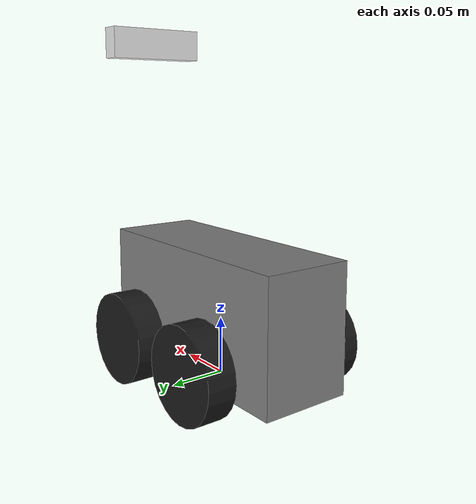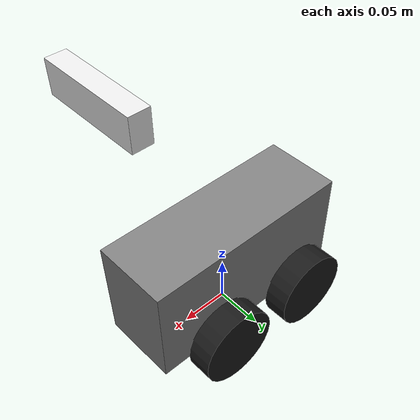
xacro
<?xml version="1.0"?>
<robot name="homebot" xmlns:xacro="http://ros.org/wiki/xacro">
	<link name="world"/>
  <link name="base_footprint"/>

  <!-- 1. PHYSICAL PROPERTIES   -->
  <!-- Base dimensions in meters, mass in kg -->
  <xacro:property name="base_width" value="0.08"/>
  <xacro:property name="base_length" value="0.22"/>
  <xacro:property name="base_height" value="0.11"/>
  <xacro:property name="base_mass" value="1.0"/> <!-- including battery, compute and motors -->

  <!-- Wheel dimensions in meters, mass in kg -->
  <xacro:property name="wheel_radius" value="0.04"/>
  <xacro:property name="wheel_width" value="0.025"/>
  <xacro:property name="wheel_mass" value="0.15"/>

  <!-- Wheel placement offsets from the center of the base -->
  <xacro:property name="wheel_offset_x" value="0.05"/> <!-- Distance from center to front/rear axis -->
  <xacro:property name="wheel_offset_y" value="0.065"/> <!-- Distance from center to left/right wheel center -->
  <xacro:property name="wheel_offset_z" value="-0.03"/> <!-- Drop the wheels slightly below the chassis -->

  <!-- OAK-D Lite Camera dimensions in meters, mass in kg -->
  <xacro:property name="camera_length" value="0.0175"/> <!-- X: Depth -->
  <xacro:property name="camera_width" value="0.091"/>   <!-- Y: Width -->
  <xacro:property name="camera_height" value="0.028"/>  <!-- Z: Height -->
  <xacro:property name="camera_mass" value="0.061"/>

  <!-- Camera placement offsets from the center of the base_link -->
  <xacro:property name="camera_offset_x" value="0.11"/> <!-- Distance forward to the mount -->
  <xacro:property name="camera_offset_y" value="0.0"/>  <!-- Centered on the chassis (0.0) -->
  <xacro:property name="camera_offset_z" value="0.23"/> <!-- Distance up from the center (mounting height) -->

  <!-- Camera tilt (Pitch) in radians. Use 0 if looking straight ahead. -->
  <xacro:property name="camera_pitch" value="0.0"/> <!-- e.g., 0.2618 for a 15-degree downward tilt -->

  <!-- 2. INERTIA MACROS (Standard mathematical formulas)       -->
  <xacro:macro name="box_inertia" params="m w h d">
    <inertial>
      <mass value="${m}"/>
      <inertia ixx="${(m/12) * (h*h + d*d)}" ixy="0.0" ixz="0.0"
               iyy="${(m/12) * (w*w + d*d)}" iyz="0.0"
               izz="${(m/12) * (w*w + h*h)}"/>
    </inertial>
  </xacro:macro>

  <xacro:macro name="cylinder_inertia" params="m r h">
    <inertial>
      <mass value="${m}"/>
      <inertia ixx="${(m/12) * (3*r*r + h*h)}" ixy="0.0" ixz="0.0"
               iyy="${(m/12) * (3*r*r + h*h)}" iyz="0.0"
               izz="${(m/2) * (r*r)}"/>
    </inertial>
  </xacro:macro>

  <!-- 3. BASE LINK (The main chassis)                          -->
  <link name="base_link">
    <visual>
      <geometry>
        <box size="${base_length} ${base_width} ${base_height}"/>
      </geometry>
      <material name="gray">
        <color rgba="0.5 0.5 0.5 1.0"/>
      </material>
    </visual>
    <collision>
      <geometry>
        <box size="${base_length} ${base_width} ${base_height}"/>
      </geometry>
    </collision>
    <xacro:box_inertia m="${base_mass}" w="${base_width}" h="${base_height}" d="${base_length}"/>
  </link>

  <joint name="floating_base" type="floating">
    <parent link="world"/>
    <child link="base_footprint"/>
  </joint>

  <joint name="base_joint" type="fixed">
    <!-- Adjust the Z origin to whatever height your chassis sits off the ground -->
    <origin xyz="0 0 0.063" rpy="0 0 0"/>
    <parent link="base_footprint"/>
    <child link="base_link"/>
  </joint>

  <!-- 4. WHEEL MACRO                                           -->
  <xacro:macro name="wheel" params="prefix x_reflect y_reflect">
    <link name="${prefix}_wheel">
      <visual>
        <!-- Rotate the cylinder so it lays flat against the chassis -->
        <origin xyz="0 0 0" rpy="0 0 0"/>
        <geometry>
          <cylinder radius="${wheel_radius}" length="${wheel_width}"/>
        </geometry>
        <material name="black">
          <color rgba="0.1 0.1 0.1 1.0"/>
        </material>
      </visual>
      <collision>
        <origin xyz="0 0 0" rpy="0 0 0"/>
        <geometry>
          <cylinder radius="${wheel_radius}" length="${wheel_width}"/>
        </geometry>
      </collision>
      <xacro:cylinder_inertia m="${wheel_mass}" r="${wheel_radius}" h="${wheel_width}"/>
    </link>

    <!-- The joint acts as physical motor axis -->
    <joint name="${prefix}_wheel_joint" type="revolute">
      <parent link="base_link"/>
      <child link="${prefix}_wheel"/>
      <origin xyz="${x_reflect * wheel_offset_x} ${y_reflect * wheel_offset_y} ${wheel_offset_z}" rpy="-1.5708 0 0"/>
      <axis xyz="0 0 1"/>
      <limit lower="-inf" upper="inf" velocity="inf"/>
      <dynamics friction="0"/>
      <!-- isaac:source_drive {"armature": 0.0, "drive": {"damping": 100000.0, "max_force": 3.4028234663852886e+38, "stiffness": 0.0, "target_position": 0.0}, "instance": "angular", "source": "physx"} -->
    </joint>
  </xacro:macro>

  <!-- 5. INSTANTIATE THE 4 WHEELS                              -->
  <xacro:wheel prefix="front_left" x_reflect="1" y_reflect="1"/>
  <xacro:wheel prefix="front_right" x_reflect="1" y_reflect="-1"/>
  <xacro:wheel prefix="rear_left" x_reflect="-1" y_reflect="1"/>
  <xacro:wheel prefix="rear_right" x_reflect="-1" y_reflect="-1"/>

  <!-- 6. CAMERA (OAK-D Lite)                                   -->
  <link name="camera_link">
    <visual>
      <geometry>
        <box size="${camera_length} ${camera_width} ${camera_height}"/>
      </geometry>
      <material name="white">
        <color rgba="0.9 0.9 0.9 1.0"/>
      </material>
    </visual>
    <collision>
      <geometry>
        <box size="${camera_length} ${camera_width} ${camera_height}"/>
      </geometry>
    </collision>
    <xacro:box_inertia m="${camera_mass}" w="${camera_width}" h="${camera_height}" d="${camera_length}"/>
  </link>

  <!-- The fixed joint rigidly attaches the camera to the chassis -->
  <joint name="camera_joint" type="fixed">
    <parent link="base_link"/>
    <child link="camera_link"/>
    <!-- XYZ sets the physical location. RPY sets the orientation (Roll, Pitch, Yaw). -->
    <!-- Pitch rotates around the Y axis, tilting the camera up or down. -->
    <origin xyz="${camera_offset_x} ${camera_offset_y} ${camera_offset_z}" rpy="0 ${camera_pitch} 0"/>
  </joint>

</robot>
